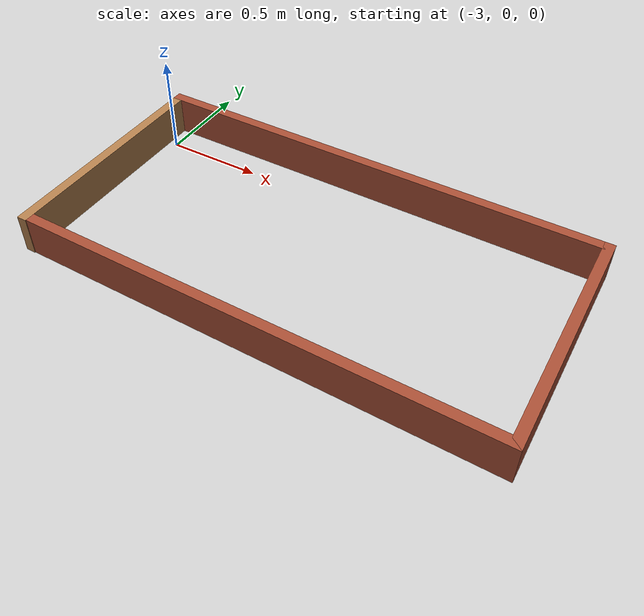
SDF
<?xml version='1.0'?>
<sdf version='1.7'>
  <model name='Espacio_virtual'>
    <pose>-1.54714 -0.42252 0 0 -0 0</pose>
    <link name='Wall_10'>
      <collision name='Wall_10_Collision'>
        <geometry>
          <box>
            <size>2.4 0.05 0.2</size>
          </box>
        </geometry>
        <pose>0 0 0.1 0 -0 0</pose>
      </collision>
      <visual name='Wall_10_Visual'>
        <pose>0 0 0.1 0 -0 0</pose>
        <geometry>
          <box>
            <size>2.4 0.05 0.2</size>
          </box>
        </geometry>
        <material>
          <script>
            <uri>file://media/materials/scripts/gazebo.material</uri>
            <name>Gazebo/Bricks</name>
          </script>
          <ambient>0.760784 0.662745 0.627451 1</ambient>
        </material>
        <meta>
          <layer>0</layer>
        </meta>
      </visual>
      <pose>-0.346997 -0.575038 0 0 -0 -0.002929</pose>
    </link>
    <link name='Wall_12'>
      <collision name='Wall_12_Collision'>
        <geometry>
          <box>
            <size>1.20365 0.05 0.2</size>
          </box>
        </geometry>
        <pose>0 0 0.1 0 -0 0</pose>
      </collision>
      <visual name='Wall_12_Visual'>
        <pose>0 0 0.1 0 -0 0</pose>
        <geometry>
          <box>
            <size>1.20365 0.05 0.2</size>
          </box>
        </geometry>
        <material>
          <script>
            <uri>file://media/materials/scripts/gazebo.material</uri>
            <name>Gazebo/Bricks</name>
          </script>
          <ambient>0.760784 0.662745 0.627451 1</ambient>
        </material>
        <meta>
          <layer>0</layer>
        </meta>
      </visual>
      <pose>0.828137 -0.00148 0 0 -0 1.5708</pose>
    </link>
    <link name='Wall_15'>
      <collision name='Wall_15_Collision'>
        <geometry>
          <box>
            <size>2.4 0.05 0.2</size>
          </box>
        </geometry>
        <pose>0 0 0.1 0 -0 0</pose>
      </collision>
      <visual name='Wall_15_Visual'>
        <pose>0 0 0.1 0 -0 0</pose>
        <geometry>
          <box>
            <size>2.4 0.05 0.2</size>
          </box>
        </geometry>
        <material>
          <script>
            <uri>file://media/materials/scripts/gazebo.material</uri>
            <name>Gazebo/Bricks</name>
          </script>
          <ambient>0.760784 0.662745 0.627451 1</ambient>
        </material>
        <meta>
          <layer>0</layer>
        </meta>
      </visual>
      <pose>-0.346863 0.57702 0 0 -0 -0.001277</pose>
    </link>
    <link name='Wall_8'>
      <collision name='Wall_8_Collision'>
        <geometry>
          <box>
            <size>1.20339 0.05 0.2</size>
          </box>
        </geometry>
        <pose>0 0 0.1 0 -0 0</pose>
      </collision>
      <visual name='Wall_8_Visual'>
        <pose>0 0 0.1 0 -0 0</pose>
        <geometry>
          <box>
            <size>1.20339 0.05 0.2</size>
          </box>
        </geometry>
        <material>
          <script>
            <uri>file://media/materials/scripts/gazebo.material</uri>
            <name>Gazebo/Wood</name>
          </script>
          <ambient>0.760784 0.662745 0.627451 1</ambient>
        </material>
        <meta>
          <layer>0</layer>
        </meta>
      </visual>
      <pose>-1.522 0.001827 0 0 -0 1.57056</pose>
    </link>
    <static>1</static>
  </model>
</sdf>
